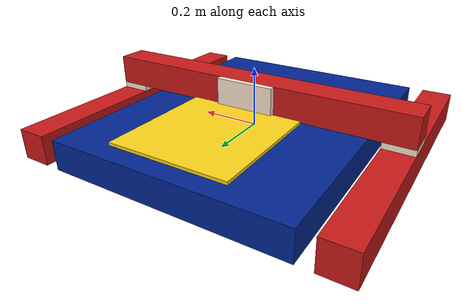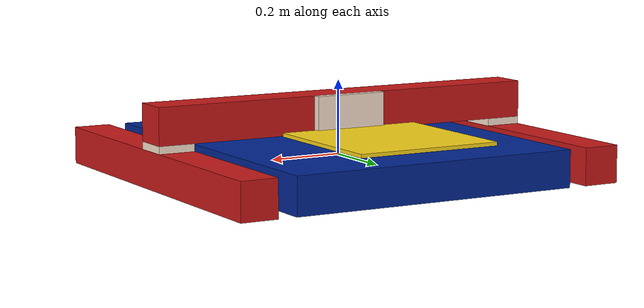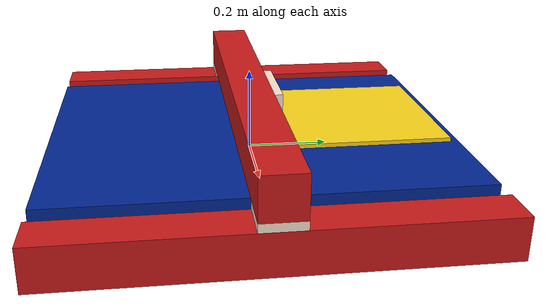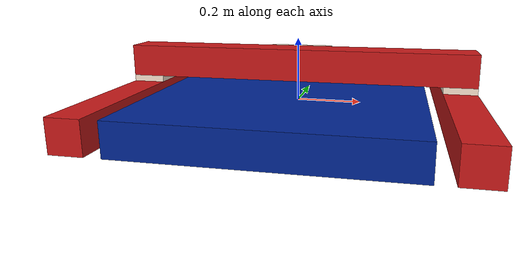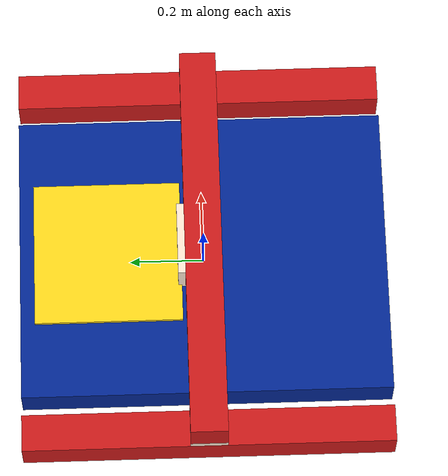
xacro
<?xml version="1.0"?>
<robot xmlns:xacro="http://www.ros.org/wiki/xacro" name="my_box_bot">

  <!-- Materials -->
  <material name="blue">
    <color rgba="0.006 0.151 0.581 1"/>
  </material>

  <material name="white">
    <color rgba="1.0 0.91 0.827 1"/>
  </material>

  <material name="green">
    <color rgba="0.0 0.6 0.2 1"/>
  </material>

  <material name="red">
    <color rgba="0.8 0.1 0.1 1"/>
  </material>

  <material name="yellow">
    <color rgba="1.0 0.85 0.1 1"/>
  </material>

  <material name="gray">
    <color rgba="0.5 0.5 0.5 1"/>
  </material>

  <material name="purple">
    <color rgba="0.5 0.1 0.6 1"/>
  </material>

  <!-- ==================== base_link ==================== -->
  <link name="base_link">
    <visual>
      <origin xyz="0 0 0" rpy="0 0 0"/>
      <geometry>
        <box size="0.8 1.0 0.1"/>
      </geometry>
      <material name="blue"/>
    </visual>
    <collision>
      <origin xyz="0 0 0" rpy="0 0 0"/>
      <geometry>
        <box size="0.8 1.0 0.1"/>
      </geometry>
    </collision>
    <inertial>
      <mass value="1.2"/>
      <origin xyz="0 0 0" rpy="0 0 0"/>
      <!-- From box inertia formulas -->
      <inertia
        ixx="0.0100" ixy="0.0" ixz="0.0"
        iyy="0.0065" iyz="0.0"
        izz="0.0133"/>
    </inertial>
  </link>

  <gazebo reference="base_link">
    <kp>500000</kp>
    <kd>100</kd>
    <mu1>1.0</mu1>
    <mu2>1.0</mu2>
    <material>Gazebo/Blue</material>
  </gazebo>

  <!-- ==================== left rail ==================== -->
  <link name="rail_left_link">
    <visual>
      <origin xyz="0 0 0" rpy="0 0 0"/>
      <geometry>
        <box size="0.1 1.0 0.1"/>
      </geometry>
      <material name="red"/>
    </visual>
    <collision>
      <origin xyz="0 0 0" rpy="0 0 0"/>
      <geometry>
        <box size="0.1 1.0 0.1"/>
      </geometry>
    </collision>
    <inertial>
      <mass value="0.5"/>
      <origin xyz="0 0 0" rpy="0 0 0"/>
      <!-- 0.1 x 1.0 x 0.1 box -->
      <inertia
        ixx="0.00417" ixy="0.0" ixz="0.0"
        iyy="0.00083" iyz="0.0"
        izz="0.00417"/>
    </inertial>
  </link>

  <joint name="base_link_to_rail_left_link_joint" type="fixed">
    <origin xyz="0.5 0 0.0" rpy="0 0 0"/>
    <parent link="base_link"/>
    <child link="rail_left_link"/>
  </joint>

  <gazebo reference="rail_left_link">
    <kp>500000</kp>
    <kd>100</kd>
    <mu1>1.0</mu1>
    <mu2>1.0</mu2>
    <material>Gazebo/Red</material>
  </gazebo>

  <!-- ==================== left mount (prismatic) ==================== -->
  <link name="mount_left_link">
    <visual>
      <origin xyz="0 0 0" rpy="0 0 0"/>
      <geometry>
        <box size="0.1 0.1 0.02"/>
      </geometry>
      <material name="white"/>
    </visual>
    <collision>
      <origin xyz="0 0 0" rpy="0 0 0"/>
      <geometry>
        <box size="0.1 0.1 0.02"/>
      </geometry>
    </collision>
    <inertial>
      <mass value="0.2"/>
      <origin xyz="0 0 0" rpy="0 0 0"/>
      <inertia ixx="0.000033"  ixy="0.0" ixz="0.0"
      iyy="0.000033"  iyz="0.0"
      izz="0.000167"/>
    </inertial>
  </link>

  <joint name="y_control_joint" type="prismatic">
    <origin xyz="0 0 0.06" rpy="0 0 0"/>
    <parent link="rail_left_link"/>
    <child link="mount_left_link"/>
    <axis xyz="0 1 0"/>
    <limit effort="100" velocity="0.2" lower="-0.45" upper="0.2"/>
    <dynamics damping="5.0" friction="1.0"/>
  </joint>

  <!-- ==================== right rail ==================== -->
  <link name="rail_right_link">
    <visual>
      <origin xyz="0 0 0" rpy="0 0 0"/>
      <geometry>
        <box size="0.1 1.0 0.1"/>
      </geometry>
      <material name="red"/>
    </visual>
    <collision>
      <origin xyz="0 0 0" rpy="0 0 0"/>
      <geometry>
        <box size="0.1 1.0 0.1"/>
      </geometry>
    </collision>
    <inertial>
      <mass value="0.5"/>
      <origin xyz="0 0 0" rpy="0 0 0"/>
      <inertia
        ixx="0.00417" ixy="0.0" ixz="0.0"
        iyy="0.00083" iyz="0.0"
        izz="0.00417"/>
    </inertial>
  </link>

  <joint name="base_link_to_rail_right_link_joint" type="fixed">
    <origin xyz="-0.5 0 0.0" rpy="0 0 0"/>
    <parent link="base_link"/>
    <child link="rail_right_link"/>
  </joint>

  <gazebo reference="rail_right_link">
    <kp>500000</kp>
    <kd>100</kd>
    <mu1>1.0</mu1>
    <mu2>1.0</mu2>
    <material>Gazebo/Red</material>
  </gazebo>

  <!-- ==================== right mount (rigid to left mount) ==================== -->
  <link name="mount_right_link">
    <visual>
      <origin xyz="0 0 0" rpy="0 0 0"/>
      <geometry>
        <box size="0.1 0.1 0.02"/>
      </geometry>
      <material name="white"/>
    </visual>
    <collision>
      <origin xyz="0 0 0" rpy="0 0 0"/>
      <geometry>
        <box size="0.1 0.1 0.02"/>
      </geometry>
    </collision>
    <inertial>
      <mass value="0.2"/>
      <origin xyz="0 0 0" rpy="0 0 0"/>
      <inertia ixx="0.000033"  ixy="0.0" ixz="0.0"
      iyy="0.000033"  iyz="0.0"
      izz="0.000167"/>
    </inertial>
  </link>

  <!-- Right mount is rigidly attached relative to left mount -->
  <joint name="mount_left_link_to_mount_right_link_joint" type="fixed">
    <!-- 1.0 m offset in X from left mount -->
    <origin xyz="-1.0 0 0" rpy="0 0 0"/>
    <parent link="mount_left_link"/>
    <child link="mount_right_link"/>
  </joint>

  <!-- ==================== center rail ==================== -->
  <link name="rail_center_link">
    <visual>
      <origin xyz="0 0 0" rpy="0 0 0"/>
      <geometry>
        <box size="1.1 0.1 0.1"/>
      </geometry>
      <material name="red"/>
    </visual>
    <collision>
      <origin xyz="0 0 0" rpy="0 0 0"/>
      <geometry>
        <box size="1.1 0.1 0.1"/>
      </geometry>
    </collision>
    <inertial>
      <mass value="0.1"/>
      <origin xyz="0 0 0" rpy="0 0 0"/>
      <inertia
        ixx="0.000183" ixy="0.0" ixz="0.0"
        iyy="0.00092" iyz="0.0"
        izz="0.00092"/>
    </inertial>
  </link>

  <joint name="mount_left_link_to_rail_center_link_joint" type="fixed">
    <origin xyz="-0.5 0 0.06" rpy="0 0 0"/>
    <parent link="mount_left_link"/>
    <child link="rail_center_link"/>
  </joint>

  <gazebo reference="rail_center_link">
    <material>Gazebo/Red</material>
  </gazebo>

  <!-- ==================== center mount (X prismatic) ==================== -->
  <link name="mount_center_link">
    <visual>
      <origin xyz="0 0 0" rpy="0 0 0"/>
      <geometry>
        <box size="0.2 0.02 0.1"/>
      </geometry>
      <material name="white"/>
    </visual>
    <collision>
      <origin xyz="0 0 0" rpy="0 0 0"/>
      <geometry>
        <box size="0.2 0.02 0.1"/>
      </geometry>
    </collision>
    <inertial>
      <mass value="0.1"/>
      <origin xyz="0 0 0" rpy="0 0 0"/>
      <inertia
        ixx="0.000017" ixy="0.0" ixz="0.0"
        iyy="0.00017" iyz="0.0"
        izz="0.000153"/>
    </inertial>
  </link>

  <joint name="x_control_joint" type="prismatic">
    <origin xyz="0 0.06 0" rpy="0 0 0"/>
    <parent link="rail_center_link"/>
    <child link="mount_center_link"/>
    <axis xyz="1 0 0"/>
    <limit effort="100" velocity="0.2" lower="-0.16" upper="0.16"/>
    <dynamics damping="5.0" friction="1.0"/>
  </joint>

  <!-- ==================== wafer holder ==================== -->
  <link name="wafer_holder_link">
    <visual>
      <origin xyz="0 0 0" rpy="0 0 0"/>
      <geometry>
        <box size="0.4 0.4 0.01"/>
      </geometry>
      <material name="yellow"/>
    </visual>
    <collision>
      <origin xyz="0 0 0" rpy="0 0 0"/>
      <geometry>
        <box size="0.4 0.4 0.01"/>
      </geometry>
    </collision>
    <inertial>
      <mass value="0.1"/>
      <origin xyz="0 0 0" rpy="0 0 0"/>
      <inertia
        ixx="0.00017" ixy="0.0" ixz="0.0"
        iyy="0.00017" iyz="0.0"
        izz="0.00533"/>
    </inertial>
  </link>

  <joint name="mount_center_link_to_wafer_holder_link_joint" type="fixed">
    <origin xyz="0 0.2 -0.045" rpy="0 0 0"/>
    <parent link="mount_center_link"/>
    <child link="wafer_holder_link"/>
  </joint>

  <gazebo reference="wafer_holder_link">
    <material>Gazebo/Yellow</material>
  </gazebo>

  <!-- ==================== joint_state + ros2_control (unchanged) ==================== -->

  <gazebo>
    <plugin name="vacuscan_bot_joint_state" filename="libgazebo_ros_joint_state_publisher.so">
      <ros>
        <remapping>~/out:=joint_states</remapping>
      </ros>
      <update_rate>30</update_rate>
      <joint_name>y_control_joint</joint_name>
      <joint_name>x_control_joint</joint_name>
    </plugin>
  </gazebo>

  <ros2_control name="GazeboSystem" type="system">
    <hardware>
      <plugin>gazebo_ros2_control/GazeboSystem</plugin>
    </hardware>

    <joint name="y_control_joint">
      <command_interface name="position">
        <param name="min">-0.45</param>
        <param name="max">0.2</param>
      </command_interface>
      <state_interface name="position"/>
      <state_interface name="velocity"/>
      <state_interface name="effort"/>
    </joint>

  <joint name="x_control_joint">
    <command_interface name="position">
      <param name="min">-0.16</param>
      <param name="max">0.16</param>
    </command_interface>
    <state_interface name="position"/>
    <state_interface name="velocity"/>
    <state_interface name="effort"/>
  </joint>

  </ros2_control>

  <gazebo>
    <plugin filename="libgazebo_ros2_control.so" name="gazebo_ros2_control">
      <!-- Keep your existing controller YAML path -->
      <parameters>$(find vacuscan_description)/config/controller_position.yaml</parameters>
      <robot_param_node>/vacuscan_bot_state_publisher_node</robot_param_node>
    </plugin>
  </gazebo>

    <!-- *********************** CAMERA SETUP *********************************  -->
    <!-- Each sensor must be attached to a link.                              -->
    <joint name="camera_joint" type="fixed">
    <parent link="base_link"/>
    <child link="camera_link"/>
    <origin xyz="0.0 0.0 1.2" rpy="0 1.57 0"/>
    </joint>
    <link name="camera_link"/>

    <gazebo reference="camera_link">
        <sensor name="camera" type="camera">
            <update_rate>30.0</update_rate>
            <always_on>1</always_on>
            <visualize>true</visualize>
            <camera name="camera">
                <horizontal_fov>1.3962634</horizontal_fov>
                <image>
                    <width>480</width>
                    <height>360</height>
                    <format>R8G8B8</format>
                </image>
                <clip>
                    <!-- distance described in meters -->
                    <near>0.01</near>
                    <far>20</far>
                </clip>
                <distortion>
                    <k1>0.0</k1>
                    <k2>0.0</k2>
                    <k3>0.0</k3>
                    <p1>0.0</p1>
                    <p2>0.0</p2>
                    <center>0.5 0.5</center>
                </distortion>
            </camera>
            <plugin filename="libgazebo_ros_camera.so" name="camera_controller">
            <ros>
                <remapping>~/image_raw:=camera/image_raw</remapping>
                <remapping>~/camera_info:=camera/camera_info</remapping>
            </ros>
            <camera_name>camera_low</camera_name>
            <frame_name>camera_link</frame_name>
            </plugin>
        </sensor>
    </gazebo>

    <!-- *********************** CAMERA2 SETUP *********************************  -->
    <!-- Each sensor must be attached to a link. -->
    <joint name="camera2_joint" type="fixed">
      <parent link="base_link"/>
      <child link="camera2_link"/>
      <!-- x y z (meters), r p y (radians) -->
      <origin xyz="-0.8 0.0 0.8" rpy="0 0.785 0"/>
    </joint>

    <link name="camera2_link"/>

    <gazebo reference="camera2_link">
      <sensor name="camera2" type="camera">
        <update_rate>30.0</update_rate>
        <always_on>1</always_on>
        <visualize>true</visualize>

        <camera name="camera2">
          <horizontal_fov>1.3962634</horizontal_fov>
          <image>
            <width>480</width>
            <height>360</height>
            <format>R8G8B8</format>
          </image>
          <clip>
            <near>0.01</near>
            <far>20</far>
          </clip>
          <distortion>
            <k1>0.0</k1>
            <k2>0.0</k2>
            <k3>0.0</k3>
            <p1>0.0</p1>
            <p2>0.0</p2>
            <center>0.5 0.5</center>
          </distortion>
        </camera>

        <plugin filename="libgazebo_ros_camera.so" name="camera2_controller">
          <ros>
            <!-- Remap default ~/image_raw and ~/camera_info to unique topics -->
            <remapping>~/image_raw:=/camera2/image_raw</remapping>
            <remapping>~/camera_info:=/camera2/camera_info</remapping>
          </ros>
          <camera_name>camera_low2</camera_name>
          <frame_name>camera2_link</frame_name>
        </plugin>
      </sensor>
    </gazebo>

    <!-- *********************** Laser scanner *********************************  -->
    <!-- Each sensor must be attached to a link.                              -->
    <joint name="laser_joint" type="fixed">
    <parent link="base_link"/>
    <child link="laser_link"/>
    <origin xyz="0.0 0.0 1.5" rpy="1.57 0 0"/>
    </joint>
    <link name="laser_link"/>

    <!-- laser Sensors -->
    <gazebo reference="laser_link">
      <sensor name="sensor_ray" type="ray">
          <pose>0 0 0 0 0 0</pose>
          <ray>
            <scan>
              <horizontal>
                <samples>200</samples>
                <resolution>1.0</resolution>
                <min_angle>-2.02</min_angle>
                <max_angle>-1.12</max_angle>
              </horizontal>
            </scan>
            <range>
              <min>0.1</min>
              <max>5.0</max>
            </range>
          </ray>
          <always_on>true</always_on>
          <visualize>true</visualize>
          <update_rate>100.0</update_rate>
          <plugin name="laser" filename="libgazebo_ros_ray_sensor.so">
            <ros>
              <namespace>/vacuscan</namespace>
              <remapping>~/out:=laser_scan</remapping>
            </ros>
            <output_type>sensor_msgs/LaserScan</output_type>
            <frame_name>laser_link</frame_name>
          </plugin>
        </sensor>
    </gazebo>
</robot>
